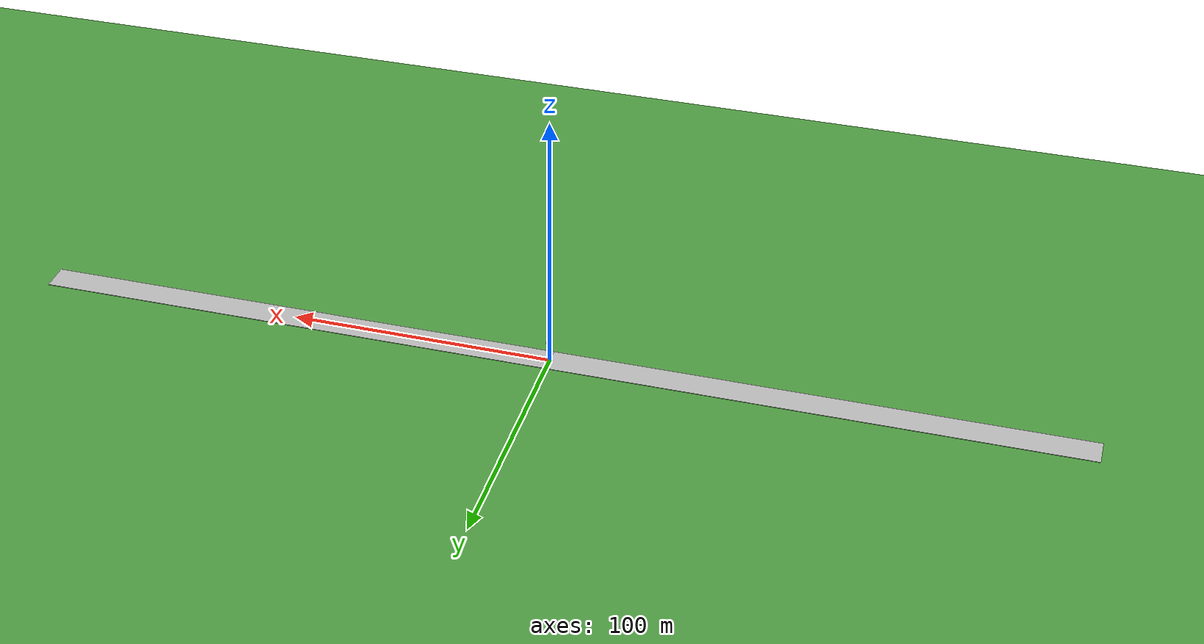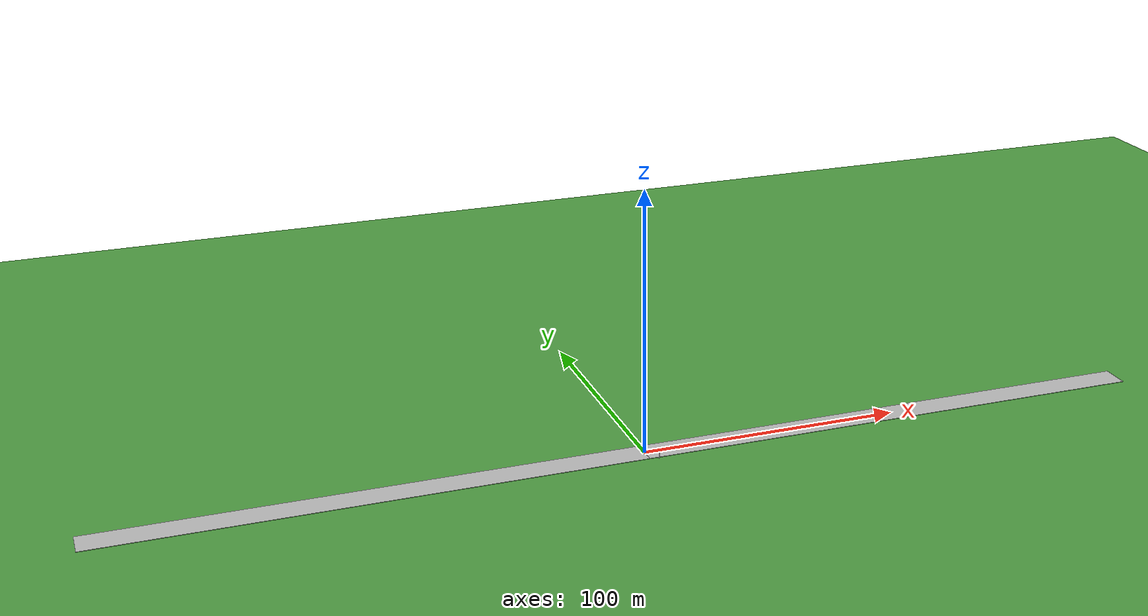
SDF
<sdf version="1.6">
 <world name="default">
  <light name="sun" type="directional">
   <pose>0 0 10 0 -0 0</pose>
   <diffuse>0.8 0.8 0.8 1</diffuse>
   <specular>0.1 0.1 0.1 1</specular>
   <attenuation>
    <range>1000</range>
    <constant>0.9</constant>
    <linear>0.01</linear>
    <quadratic>0.001</quadratic>
   </attenuation>
   <direction>-0.5 0.5 -1</direction>
  </light>
  <gravity>0 0 -9.8</gravity>
  <magnetic_field>6e-06 2.3e-05 -4.2e-05</magnetic_field>
  <atmosphere type="adiabatic"/>
  <physics name="default_physics" default="0" type="ode">
   <max_step_size>0.001</max_step_size>
   <real_time_factor>1</real_time_factor>
   <real_time_update_rate>1000</real_time_update_rate>
  </physics>
  <scene><ambient>0.4 0.4 0.4 1</ambient><background>0.7 0.7 0.7 1</background><shadows>1</shadows></scene>
  <spherical_coordinates>
   <surface_model>EARTH_WGS84</surface_model>
   <latitude_deg>0</latitude_deg>
   <longitude_deg>0</longitude_deg>
   <elevation>0</elevation>
   <heading_deg>0</heading_deg>
  </spherical_coordinates>
  <model name="grass_plane">
   <static>1</static>
   <link name="link">
    <collision name="collision">
     <geometry><plane><normal>0 0 1</normal><size>1000 1000</size></plane></geometry>
     <surface><friction><ode><mu>100</mu><mu2>50</mu2></ode></friction></surface>
    </collision>
    <visual name="visual">
     <cast_shadows>0</cast_shadows>
     <geometry><plane><normal>0 0 1</normal><size>1000 1000</size></plane></geometry>
     <material>
      <script>
       <uri>model://ds_grass_background/materials/scripts</uri>
       <uri>model://ds_grass_background/materials/textures</uri>
       <name>GrassBackground</name>
      </script>
     </material>
    </visual>
   </link>
  </model>
  <model name="(DS) Straight Road - 200m">
   <static>1</static>
   <link name="link">
    <inertial>
     <mass>1</mass>
     <inertia><ixx>1</ixx><iyy>1</iyy><izz>1</izz><ixy>0</ixy><ixz>0</ixz><iyz>0</iyz></inertia>
    </inertial>
    <collision name="collision">
     <geometry>
      <mesh><uri>model://ds_straight_road_200m/meshes/straight_road_200m.dae</uri><scale>1 1 1</scale></mesh>
     </geometry>
    </collision>
    <visual name="visual">
     <geometry>
      <mesh><uri>model://ds_straight_road_200m/meshes/straight_road_200m.dae</uri><scale>1 1 1</scale></mesh>
     </geometry>
    </visual>
   </link>
   <pose>100 10 0 0 -0 0</pose>
  </model>
  <model name="(DS) Straight Road - 200m_0">
   <static>1</static>
   <link name="link">
    <inertial>
     <mass>1</mass>
     <inertia><ixx>1</ixx><iyy>1</iyy><izz>1</izz><ixy>0</ixy><ixz>0</ixz><iyz>0</iyz></inertia>
    </inertial>
    <collision name="collision">
     <geometry>
      <mesh><uri>model://ds_straight_road_200m/meshes/straight_road_200m.dae</uri><scale>1 1 1</scale></mesh>
     </geometry>
    </collision>
    <visual name="visual">
     <geometry>
      <mesh><uri>model://ds_straight_road_200m/meshes/straight_road_200m.dae</uri><scale>1 1 1</scale></mesh>
     </geometry>
    </visual>
   </link>
   <pose>-100 10 0 0 -0 0</pose>
  </model>
  <model name="Stop_Sign">
   <link name="link">
    <inertial>
     <mass>1</mass>
     <inertia><ixx>1</ixx><ixy>0</ixy><ixz>0</ixz><iyy>1</iyy><iyz>0</iyz><izz>1</izz></inertia>
    </inertial>
    <visual name="visual">
     <geometry><mesh><uri>model://stop_sign/meshes/stop_sign.dae</uri><scale>2 2 2</scale></mesh></geometry>
     <material>
      <script>
       <uri>model://stop_sign/materials/scripts</uri>
       <uri>model://stop_sign/materials/textures</uri>
       <name>StopSign/Diffuse</name>
      </script>
      <shader type="pixel"><normal_map>__default__</normal_map></shader>
      <ambient>1 1 1 1</ambient>
      <diffuse>1 1 1 1</diffuse>
      <specular>0 0 0 1</specular>
      <emissive>0 0 0 1</emissive>
     </material>
    </visual>
    <collision name="collision">
     <geometry>
      <mesh><uri>/home/obin/.gazebo/models/stop_sign/meshes/stop_sign.dae</uri><scale>2 2 2</scale></mesh>
     </geometry>
     <surface>
      <friction>
       <ode><mu>1</mu><mu2>1</mu2><fdir1>0 0 0</fdir1><slip1>0</slip1><slip2>0</slip2></ode>
       <torsional>
        <coefficient>1</coefficient>
        <patch_radius>0</patch_radius>
        <surface_radius>0</surface_radius>
        <use_patch_radius>1</use_patch_radius>
        <ode><slip>0</slip></ode>
       </torsional>
      </friction>
      <bounce><restitution_coefficient>0</restitution_coefficient><threshold>1e+06</threshold></bounce>
      <contact>
       <collide_without_contact>0</collide_without_contact>
       <collide_without_contact_bitmask>1</collide_without_contact_bitmask>
       <collide_bitmask>1</collide_bitmask>
       <ode>
        <soft_cfm>0</soft_cfm>
        <soft_erp>0.2</soft_erp>
        <kp>1e+13</kp>
        <kd>1</kd>
        <max_vel>0.01</max_vel>
        <min_depth>0</min_depth>
       </ode>
       <bullet>
        <split_impulse>1</split_impulse>
        <split_impulse_penetration_threshold>-0.01</split_impulse_penetration_threshold>
        <soft_cfm>0</soft_cfm>
        <soft_erp>0.2</soft_erp>
        <kp>1e+13</kp>
        <kd>1</kd>
       </bullet>
      </contact>
     </surface>
    </collision>
   </link>
   <static>1</static>
   <pose>3.30617 -6.43241 0.016698 0 0 -1.55779</pose>
  </model>
 </world>
</sdf>
